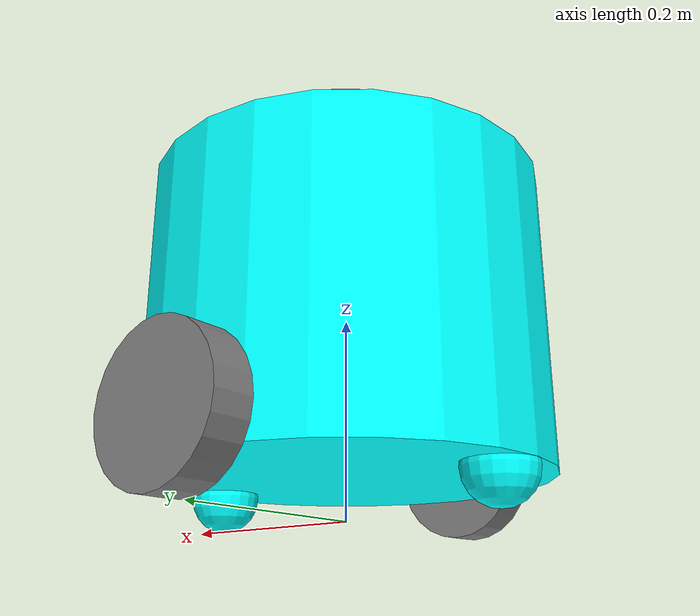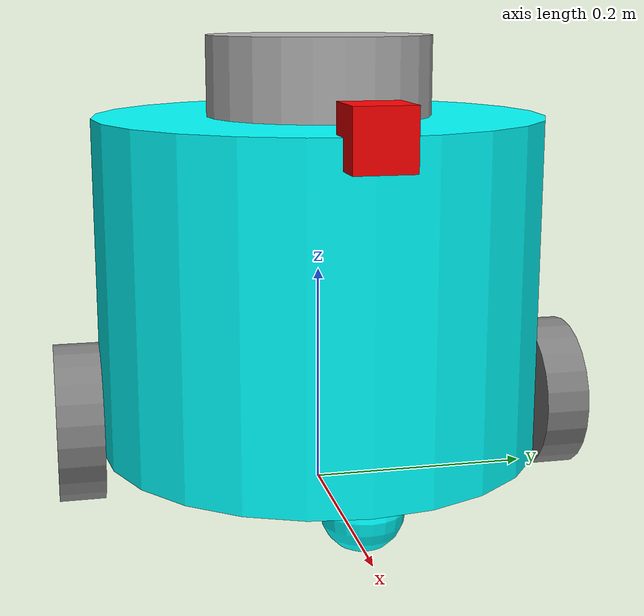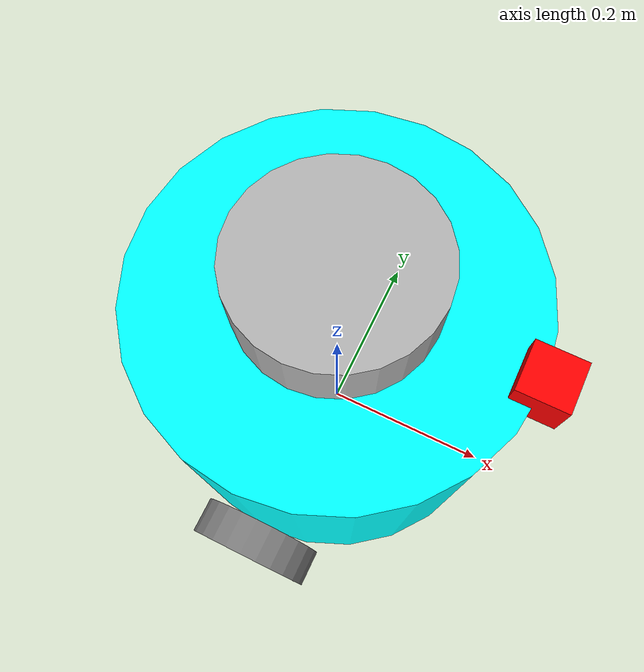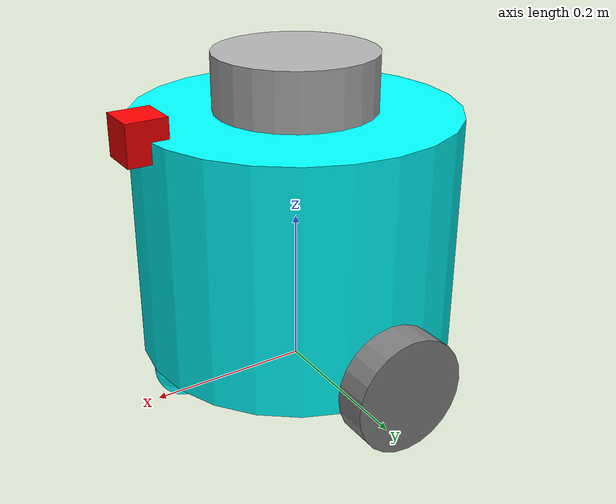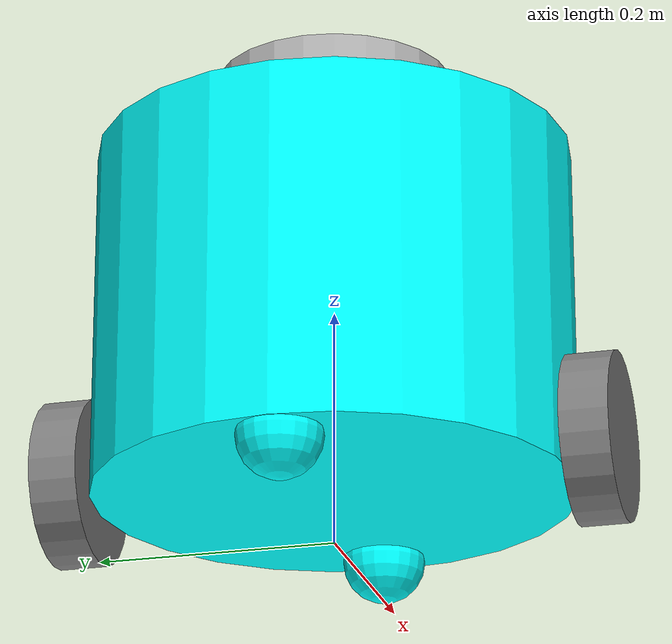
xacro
<?xml version="1.0"?>
<robot name="mobile_bot" xmlns:xacro="http://ros.org/wiki/xacro">
    <!-- Define robot constants -->
    <xacro:property name="base_radius" value="0.20"/>
    <xacro:property name="base_height" value="0.30"/>

    <xacro:property name="wheel_radius" value="0.07"/>
    <xacro:property name="wheel_width" value="0.04"/>
    <xacro:property name="wheel_zoff" value="0.12"/>

    <xacro:property name="caster_radius" value="0.035"/>
    <xacro:property name="caster_xoff" value="${base_radius-caster_radius}"/>

    <xacro:property name="imu_size" value="0.1"/>
    <xacro:property name="lidar_radius" value="0.1"/>
    <xacro:property name="lidar_height" value="0.07"/>

    <xacro:property name="camera_size" value="0.05"/>

    <!-- Define intertial property macros -->
    <xacro:macro name="box_inertia" params="m w h d">
        <inertial>
            <origin xyz="0 0 0" rpy="0 0 0"/>
            <mass value="${m}"/>
            <inertia ixx="${(m/12) * (h*h + d*d)}" ixy="0.0" ixz="0.0" iyy="${(m/12) * (w*w + d*d)}" iyz="0.0" izz="${(m/12) * (w*w + h*h)}"/>
        </inertial>
    </xacro:macro>

    <xacro:macro name="cylinder_inertia" params="m r h">
        <inertial>
            <origin xyz="0 0 0" rpy="${pi/2} 0 0"/>
            <mass value="${m}"/>
            <inertia ixx="${(m/12) * (3*r*r + h*h)}" ixy = "0" ixz = "0" iyy="${(m/12) * (3*r*r + h*h)}" iyz = "0" izz="${(m/2) * (r*r)}"/>
        </inertial>
    </xacro:macro>

    <xacro:macro name="sphere_inertia" params="m r">
        <inertial>
            <mass value="${m}"/>
            <inertia ixx="${(2/5) * m * (r*r)}" ixy="0.0" ixz="0.0" iyy="${(2/5) * m * (r*r)}" iyz="0.0" izz="${(2/5) * m * (r*r)}"/>
        </inertial>
    </xacro:macro>

    <!-- Robot Base -->
    <link name="base_link">
        <visual>
            <origin xyz="0 0 0" rpy="0 0 0"/>
            <geometry>
                <cylinder radius="${base_radius}" length="${base_height}"/>
            </geometry>
            <material name="Cyan">
                <color rgba="0 1.0 1.0 1.0"/>
            </material>
        </visual>
        <collision>
            <origin xyz="0 0 0" rpy="0 0 0"/>
            <geometry>
                <cylinder radius="${base_radius}" length="${base_height}"/>
            </geometry>
        </collision>
        <xacro:cylinder_inertia m="5" r="${base_radius}" h="${base_height}"/>
    </link>

    <!-- Robot Footprint -->
    <link name="base_footprint">
        <origin xyz="0 0 0"/>
    </link>

    <joint name="base_joint" type="fixed">
        <parent link="base_footprint"/>
        <child link="base_link"/>
        <origin xyz="0 0 ${wheel_zoff+wheel_radius}" rpy="0 0 0"/>
    </joint>

    <!-- Drive Wheels -->
    <xacro:macro name="drive_wheel" params="prefix y_reflect">
        <link name="${prefix}_link">
            <visual>
                <origin xyz="0 0 0" rpy="${pi/2} 0 0"/>
                <geometry>
                    <cylinder radius="${wheel_radius}" length="${wheel_width}"/>
                </geometry>
                <material name="Gray">
                <color rgba="0.5 0.5 0.5 1.0"/>
                </material>
            </visual>
            <collision>
                <origin xyz="0 0 0" rpy="${pi/2} 0 0"/>
                <geometry>
                <cylinder radius="${wheel_radius}" length="${wheel_width}"/>
                </geometry>
            </collision>
            <xacro:cylinder_inertia m="2" r="${wheel_radius}" h="${wheel_width}"/>
        </link>

        <joint name="${prefix}_joint" type="continuous">
            <parent link="base_link"/>
            <child link="${prefix}_link"/>
            <origin xyz="0 ${y_reflect*(base_radius+(wheel_width/2))} ${-wheel_zoff}" rpy="0 0 0"/>
            <axis xyz="0 1 0"/>
        </joint>
    </xacro:macro>

    <xacro:drive_wheel prefix="drive_wheel_l" y_reflect="1.0" />
    <xacro:drive_wheel prefix="drive_wheel_r" y_reflect="-1.0"/>

    <!-- Caster Wheel -->
    <xacro:macro name="caster_wheel" params="prefix x_reflect">
        <link name="${prefix}_link">
            <visual>
                <origin xyz="0 0 0" rpy="0 0 0"/>
                <geometry>
                    <sphere radius="${caster_radius}"/>
                </geometry>
                <material name="Cyan">
                    <color rgba="0 1.0 1.0 1.0"/>
                </material>
            </visual>
            <collision>
                <origin xyz="0 0 0" rpy="0 0 0"/>
                <geometry>
                    <sphere radius="${caster_radius}"/>
                </geometry>
            </collision>

            <xacro:sphere_inertia m="2" r="${caster_radius}"/>
        </link>

        <gazebo reference="${prefix}_link">
            <mu1 value="0"/>
            <mu2 value="0"/>
        </gazebo>

        <joint name="${prefix}_joint" type="fixed">
            <parent link="base_link"/>
            <child link="${prefix}_link"/>
            <origin xyz="${x_reflect*caster_xoff} 0 ${caster_radius-wheel_radius-wheel_zoff}" rpy="0 0 0"/>
        </joint>
    </xacro:macro>

    <xacro:caster_wheel prefix="caster_wheel_f" x_reflect="1.0"/>
    <xacro:caster_wheel prefix="caster_wheel_b" x_reflect="-1.0"/>

    <!-- Imu Plugin Set Up -->
    <link name="imu_link">
        <visual>
            <origin xyz="0 0 0" rpy="0 0 0"/>
            <geometry>
                <box size="${imu_size} ${imu_size} ${imu_size}"/>
            </geometry>
        </visual>
        <collision>
            <origin xyz="0 0 0" rpy="0 0 0"/>
            <geometry>
                <box size="${imu_size} ${imu_size} ${imu_size}"/>
            </geometry>
        </collision>
        <xacro:box_inertia m="0.1" w="${imu_size}" d="${imu_size}" h="${imu_size}"/>
    </link>

    <joint name="imu_joint" type="fixed">
        <parent link="base_link"/>
        <child link="imu_link"/>
        <origin xyz="0 0 0"/>
    </joint>

    <gazebo reference="imu_link">
        <sensor name="imu_sensor" type="imu">
            <plugin filename="libgazebo_ros_imu_sensor.so" name="imu_plugin">
                <ros>
                    <remapping>~/out:=imu</remapping>
                </ros>
                <initial_orientation_as_reference>false</initial_orientation_as_reference>
            </plugin>
            <always_on>true</always_on>
            <update_rate>100</update_rate>
            <visualize>true</visualize>
            <imu>
                <angular_velocity>
                    <x>
                        <noise type="gaussian">
                        <mean>0.0</mean>
                        <stddev>2e-4</stddev>
                        <bias_mean>0.0000075</bias_mean>
                        <bias_stddev>0.0000008</bias_stddev>
                        </noise>
                    </x>
                    <y>
                        <noise type="gaussian">
                        <mean>0.0</mean>
                        <stddev>2e-4</stddev>
                        <bias_mean>0.0000075</bias_mean>
                        <bias_stddev>0.0000008</bias_stddev>
                        </noise>
                    </y>
                    <z>
                        <noise type="gaussian">
                        <mean>0.0</mean>
                        <stddev>2e-4</stddev>
                        <bias_mean>0.0000075</bias_mean>
                        <bias_stddev>0.0000008</bias_stddev>
                        </noise>
                    </z>
                </angular_velocity>
                <linear_acceleration>
                    <x>
                        <noise type="gaussian">
                        <mean>0.0</mean>
                        <stddev>1.7e-2</stddev>
                        <bias_mean>0.1</bias_mean>
                        <bias_stddev>0.001</bias_stddev>
                        </noise>
                    </x>
                    <y>
                        <noise type="gaussian">
                        <mean>0.0</mean>
                        <stddev>1.7e-2</stddev>
                        <bias_mean>0.1</bias_mean>
                        <bias_stddev>0.001</bias_stddev>
                        </noise>
                    </y>
                    <z>
                        <noise type="gaussian">
                        <mean>0.0</mean>
                        <stddev>1.7e-2</stddev>
                        <bias_mean>0.1</bias_mean>
                        <bias_stddev>0.001</bias_stddev>
                        </noise>
                    </z>
                </linear_acceleration>
            </imu>
        </sensor>
    </gazebo>

    <gazebo>
        <plugin name='diff_drive' filename='libgazebo_ros_diff_drive.so'>
            <update_rate>30</update_rate>

            <!-- wheels -->
            <left_joint>drive_wheel_l_joint</left_joint>
            <right_joint>drive_wheel_r_joint</right_joint>

            <!-- kinematics -->
            <wheel_separation>0.35</wheel_separation>
            <wheel_diameter>0.2</wheel_diameter>

            <!-- limits -->
            <max_wheel_torque>20</max_wheel_torque>
            <max_wheel_acceleration>1.0</max_wheel_acceleration>

            <!-- input -->
            <!-- subscribe to the /cmd_vel topic-->
            <command_topic>cmd_vel</command_topic>

            <!-- output -->
            <!-- When true, publish wheel odometry information -->
            <publish_odom>true</publish_odom>

            <!-- When true, publish coordinate transform from odom to base_footprint -->
            <!-- The robot localization package will publish this information -->
            <publish_odom_tf>false</publish_odom_tf>

            <!-- When true, publish coordinate transform from base_link to the wheels -->
            <!-- The robot_state_publisher package is often used to publish this transform -->
            <!-- There will be a warning if both the robot state publisher and the differential drive package publishes the wheel transform (one of them will be ignored) -->
            <publish_wheel_tf>true</publish_wheel_tf>

            <odometry_frame>odom</odometry_frame>
            <robot_base_frame>base_footprint</robot_base_frame>
        </plugin>
    </gazebo>

    <link name="lidar_link">
        <visual>
            <origin xyz="0 0 0" rpy="0 0 0"/>
            <geometry>
                <cylinder radius="${lidar_radius}" length="${lidar_height}"/>
            </geometry>
        </visual>
        <collision>
            <origin xyz="0 0 0" rpy="0 0 0"/>
            <geometry>
                <cylinder radius="${lidar_radius}" length="${lidar_height}"/>
            </geometry>
        </collision>
        <xacro:cylinder_inertia m="0.1" r="${lidar_radius}" h="${lidar_height}"/>
    </link>

    <joint name="lidar_joint" type="fixed">
        <parent link="base_link"/>
        <child link="lidar_link"/>
        <origin xyz="0 0 ${(base_height/2)+(lidar_height/2)}" rpy="0 0 0"/>
    </joint>

    <gazebo reference="lidar_link">
        <sensor name="lidar" type="ray">
        <always_on>true</always_on>
        <visualize>true</visualize>
        <update_rate>5</update_rate>
        <ray>
            <scan>
            <horizontal>
                <samples>360</samples>
                <resolution>1.000000</resolution>
                <min_angle>0.000000</min_angle>
                <max_angle>6.280000</max_angle>
            </horizontal>
            </scan>
            <range>
            <min>0.120000</min>
            <max>6.0</max>
            <resolution>0.015000</resolution>
            </range>
            <noise>
            <type>gaussian</type>
            <mean>0.0</mean>
            <stddev>0.01</stddev>
            </noise>
        </ray>
        <plugin name="scan" filename="libgazebo_ros_ray_sensor.so">
            <ros>
            <remapping>~/out:=scan</remapping>
            </ros>
            <output_type>sensor_msgs/LaserScan</output_type>
            <frame_name>lidar_link</frame_name>
        </plugin>
        </sensor>
    </gazebo>

    <link name="camera_link">
        <origin xyz="0 0 0" rpy="0 0 0"/>
        <visual>
            <geometry>
                <box size="${camera_size} ${camera_size} ${camera_size}"/>
            </geometry>
            <material name="Red">
                <color rgba="1.0 0 0 1.0"/>
            </material>
        </visual>
        <collision>
            <geometry>
                <box size="${camera_size} ${camera_size} ${camera_size}"/>
            </geometry>
        </collision>
        <xacro:box_inertia m="0.1" w="${camera_size}" h="${camera_size}" d="${camera_size}"/>
    </link>
    <joint name="camera_j" type="fixed">
        <parent link="base_link"/>
        <child link="camera_link"/>
        <origin xyz="${base_radius} 0 ${base_height/2}" rpy="0 0 0"/>
    </joint>
    <link name="camera_optical_link"/>
    <joint name="camera_optical_j" type="fixed">
        <parent link="camera_link"/>
        <child link="camera_optical_link"/>
        <origin xyz="0 0 0" rpy="${-pi/2} 0 ${-pi/2}"/>
    </joint>

    <gazebo reference="camera_link">
        <material>Gazebo/Red</material>
        <sensor name="camera" type="camera">
            <always_on>1</always_on>
            <update_rate>30</update_rate>
            <visualize>true</visualize>
            <camera>
                <image>
                    <width>320</width>
                    <height>320</height>
                    <format>R8G8B8</format>
                </image>
                <clip>
                    <near>0.05</near>
                    <far>50.0</far>
                </clip>
            </camera>
            <plugin filename="libgazebo_ros_camera.so" name="camera_controller">
                <frame_name>camera_link</frame_name>
            </plugin>
        </sensor>
    </gazebo>
</robot>
